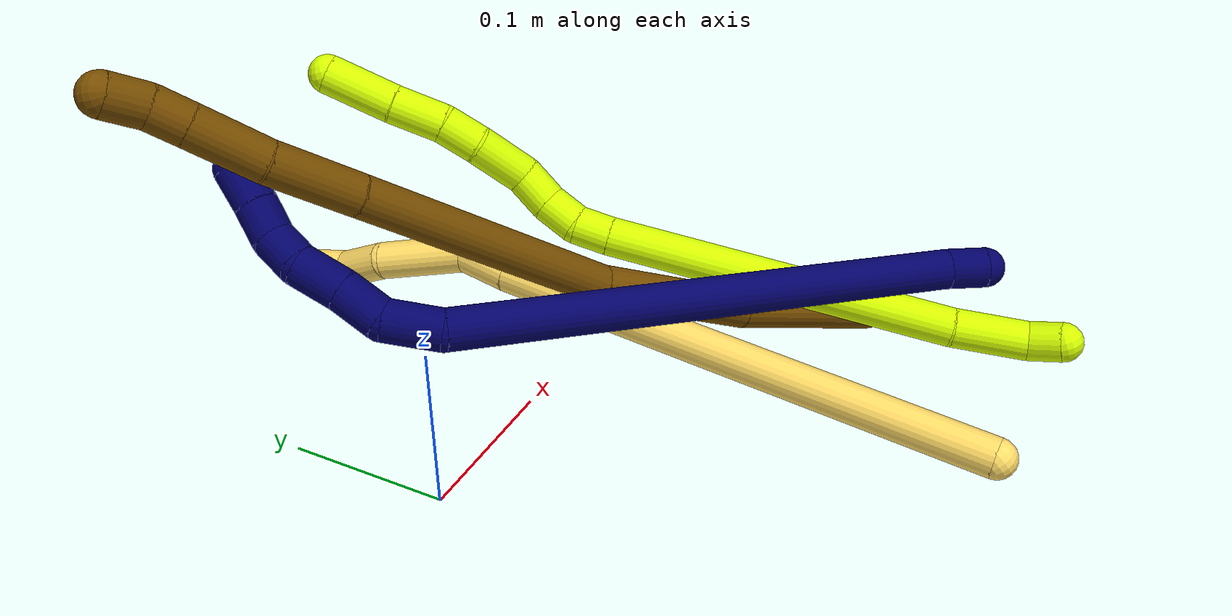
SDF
<sdf version="1.7">
 <world name="default">
  <model name="5">
   <static>0</static>
   <link name="5">
    <collision name="collision-cylinder-e_1_1_4">
     <pose>0.049279 0.136761 0.077776 -1.05371 0.303543 -0.177472</pose>
     <geometry><cylinder><radius>0.0125</radius><length>0.329734</length></cylinder></geometry>
     <surface>
      <friction><ode><mu>1.16</mu><mu2>1.16</mu2><slip1>0</slip1><slip2>0</slip2></ode></friction>
      <contact><ode><kp>1e+06</kp><kd>1</kd><max_vel>0</max_vel><min_depth>0.001</min_depth></ode></contact>
     </surface>
    </collision>
    <visual name="visual-cylinder-e_1_1_4">
     <pose>0.049279 0.136761 0.077776 -1.05371 0.303543 -0.177472</pose>
     <geometry><cylinder><radius>0.0125</radius><length>0.329734</length></cylinder></geometry>
     <material><ambient>1 0.858824 0.4 1</ambient></material>
    </visual>
    <collision name="collision-cylinder-e_2_4_5">
     <pose>0.104478 0.288038 0.162704 -1.11299 0.350711 -0.219548</pose>
     <geometry><cylinder><radius>0.0125</radius><length>0.034462</length></cylinder></geometry>
     <surface>
      <friction><ode><mu>1.16</mu><mu2>1.16</mu2><slip1>0</slip1><slip2>0</slip2></ode></friction>
      <contact><ode><kp>1e+06</kp><kd>1</kd><max_vel>0</max_vel><min_depth>0.001</min_depth></ode></contact>
     </surface>
    </collision>
    <visual name="visual-cylinder-e_2_4_5">
     <pose>0.104478 0.288038 0.162704 -1.11299 0.350711 -0.219548</pose>
     <geometry><cylinder><radius>0.0125</radius><length>0.034462</length></cylinder></geometry>
     <material><ambient>1 0.858824 0.4 1</ambient></material>
    </visual>
    <collision name="collision-cylinder-e_3_5_6">
     <pose>0.116047 0.319718 0.193411 -0.629711 0.191445 -0.062523</pose>
     <geometry><cylinder><radius>0.0125</radius><length>0.059375</length></cylinder></geometry>
     <surface>
      <friction><ode><mu>1.16</mu><mu2>1.16</mu2><slip1>0</slip1><slip2>0</slip2></ode></friction>
      <contact><ode><kp>1e+06</kp><kd>1</kd><max_vel>0</max_vel><min_depth>0.001</min_depth></ode></contact>
     </surface>
    </collision>
    <visual name="visual-cylinder-e_3_5_6">
     <pose>0.116047 0.319718 0.193411 -0.629711 0.191445 -0.062523</pose>
     <geometry><cylinder><radius>0.0125</radius><length>0.059375</length></cylinder></geometry>
     <material><ambient>1 0.858824 0.4 1</ambient></material>
    </visual>
    <collision name="collision-cylinder-e_4_6_7">
     <pose>0.119295 0.348808 0.22956 -0.758168 -0.137537 0.054861</pose>
     <geometry><cylinder><radius>0.0125</radius><length>0.035022</length></cylinder></geometry>
     <surface>
      <friction><ode><mu>1.16</mu><mu2>1.16</mu2><slip1>0</slip1><slip2>0</slip2></ode></friction>
      <contact><ode><kp>1e+06</kp><kd>1</kd><max_vel>0</max_vel><min_depth>0.001</min_depth></ode></contact>
     </surface>
    </collision>
    <visual name="visual-cylinder-e_4_6_7">
     <pose>0.119295 0.348808 0.22956 -0.758168 -0.137537 0.054861</pose>
     <geometry><cylinder><radius>0.0125</radius><length>0.035022</length></cylinder></geometry>
     <material><ambient>1 0.858824 0.4 1</ambient></material>
    </visual>
    <collision name="collision-cylinder-e_5_7_8">
     <pose>0.119519 0.367778 0.24975 -0.747714 0.248162 -0.09778</pose>
     <geometry><cylinder><radius>0.0125</radius><length>0.021371</length></cylinder></geometry>
     <surface>
      <friction><ode><mu>1.16</mu><mu2>1.16</mu2><slip1>0</slip1><slip2>0</slip2></ode></friction>
      <contact><ode><kp>1e+06</kp><kd>1</kd><max_vel>0</max_vel><min_depth>0.001</min_depth></ode></contact>
     </surface>
    </collision>
    <visual name="visual-cylinder-e_5_7_8">
     <pose>0.119519 0.367778 0.24975 -0.747714 0.248162 -0.09778</pose>
     <geometry><cylinder><radius>0.0125</radius><length>0.021371</length></cylinder></geometry>
     <material><ambient>1 0.858824 0.4 1</ambient></material>
    </visual>
    <collision name="collision-cylinder-e_6_8_2">
     <pose>0.12338 0.382093 0.264124 -0.820444 0.123735 -0.053867</pose>
     <geometry><cylinder><radius>0.0125</radius><length>0.020036</length></cylinder></geometry>
     <surface>
      <friction><ode><mu>1.16</mu><mu2>1.16</mu2><slip1>0</slip1><slip2>0</slip2></ode></friction>
      <contact><ode><kp>1e+06</kp><kd>1</kd><max_vel>0</max_vel><min_depth>0.001</min_depth></ode></contact>
     </surface>
    </collision>
    <visual name="visual-cylinder-e_6_8_2">
     <pose>0.12338 0.382093 0.264124 -0.820444 0.123735 -0.053867</pose>
     <geometry><cylinder><radius>0.0125</radius><length>0.020036</length></cylinder></geometry>
     <material><ambient>1 0.858824 0.4 1</ambient></material>
    </visual>
    <collision name="collision-sphere-2">
     <pose>0.124617 0.389365 0.270903 0 -0 0</pose>
     <geometry><sphere><radius>0.0125</radius></sphere></geometry>
     <surface>
      <friction><ode><mu>1.16</mu><mu2>1.16</mu2><slip1>0</slip1><slip2>0</slip2></ode></friction>
      <contact><ode><kp>1e+06</kp><kd>1</kd><max_vel>0</max_vel><min_depth>0.001</min_depth></ode></contact>
     </surface>
    </collision>
    <visual name="visual-sphere-2">
     <pose>0.124617 0.389365 0.270903 0 -0 0</pose>
     <geometry><sphere><radius>0.0125</radius></sphere></geometry>
     <material><ambient>1 0.858824 0.4 1</ambient></material>
    </visual>
    <collision name="collision-sphere-4">
     <pose>0.098558 0.273522 0.155551 0 -0 0</pose>
     <geometry><sphere><radius>0.0125</radius></sphere></geometry>
     <surface>
      <friction><ode><mu>1.16</mu><mu2>1.16</mu2><slip1>0</slip1><slip2>0</slip2></ode></friction>
      <contact><ode><kp>1e+06</kp><kd>1</kd><max_vel>0</max_vel><min_depth>0.001</min_depth></ode></contact>
     </surface>
    </collision>
    <visual name="visual-sphere-4">
     <pose>0.098558 0.273522 0.155551 0 -0 0</pose>
     <geometry><sphere><radius>0.0125</radius></sphere></geometry>
     <material><ambient>1 0.858824 0.4 1</ambient></material>
    </visual>
    <collision name="collision-sphere-1">
     <geometry><sphere><radius>0.0125</radius></sphere></geometry>
     <surface>
      <friction><ode><mu>1.16</mu><mu2>1.16</mu2><slip1>0</slip1><slip2>0</slip2></ode></friction>
      <contact><ode><kp>1e+06</kp><kd>1</kd><max_vel>0</max_vel><min_depth>0.001</min_depth></ode></contact>
     </surface>
    </collision>
    <visual name="visual-sphere-1">
     <geometry><sphere><radius>0.0125</radius></sphere></geometry>
     <material><ambient>1 0.858824 0.4 1</ambient></material>
    </visual>
    <collision name="collision-sphere-8">
     <pose>0.122144 0.374821 0.257345 0 -0 0</pose>
     <geometry><sphere><radius>0.0125</radius></sphere></geometry>
     <surface>
      <friction><ode><mu>1.16</mu><mu2>1.16</mu2><slip1>0</slip1><slip2>0</slip2></ode></friction>
      <contact><ode><kp>1e+06</kp><kd>1</kd><max_vel>0</max_vel><min_depth>0.001</min_depth></ode></contact>
     </surface>
    </collision>
    <visual name="visual-sphere-8">
     <pose>0.122144 0.374821 0.257345 0 -0 0</pose>
     <geometry><sphere><radius>0.0125</radius></sphere></geometry>
     <material><ambient>1 0.858824 0.4 1</ambient></material>
    </visual>
    <collision name="collision-sphere-5">
     <pose>0.110398 0.302554 0.169856 0 -0 0</pose>
     <geometry><sphere><radius>0.0125</radius></sphere></geometry>
     <surface>
      <friction><ode><mu>1.16</mu><mu2>1.16</mu2><slip1>0</slip1><slip2>0</slip2></ode></friction>
      <contact><ode><kp>1e+06</kp><kd>1</kd><max_vel>0</max_vel><min_depth>0.001</min_depth></ode></contact>
     </surface>
    </collision>
    <visual name="visual-sphere-5">
     <pose>0.110398 0.302554 0.169856 0 -0 0</pose>
     <geometry><sphere><radius>0.0125</radius></sphere></geometry>
     <material><ambient>1 0.858824 0.4 1</ambient></material>
    </visual>
    <collision name="collision-sphere-6">
     <pose>0.121696 0.336882 0.216966 0 -0 0</pose>
     <geometry><sphere><radius>0.0125</radius></sphere></geometry>
     <surface>
      <friction><ode><mu>1.16</mu><mu2>1.16</mu2><slip1>0</slip1><slip2>0</slip2></ode></friction>
      <contact><ode><kp>1e+06</kp><kd>1</kd><max_vel>0</max_vel><min_depth>0.001</min_depth></ode></contact>
     </surface>
    </collision>
    <visual name="visual-sphere-6">
     <pose>0.121696 0.336882 0.216966 0 -0 0</pose>
     <geometry><sphere><radius>0.0125</radius></sphere></geometry>
     <material><ambient>1 0.858824 0.4 1</ambient></material>
    </visual>
    <collision name="collision-sphere-7">
     <pose>0.116895 0.360735 0.242155 0 -0 0</pose>
     <geometry><sphere><radius>0.0125</radius></sphere></geometry>
     <surface>
      <friction><ode><mu>1.16</mu><mu2>1.16</mu2><slip1>0</slip1><slip2>0</slip2></ode></friction>
      <contact><ode><kp>1e+06</kp><kd>1</kd><max_vel>0</max_vel><min_depth>0.001</min_depth></ode></contact>
     </surface>
    </collision>
    <visual name="visual-sphere-7">
     <pose>0.116895 0.360735 0.242155 0 -0 0</pose>
     <geometry><sphere><radius>0.0125</radius></sphere></geometry>
     <material><ambient>1 0.858824 0.4 1</ambient></material>
    </visual>
    <inertial>
     <pose>0.071888 0.203472 0.122811 0 -0 0</pose>
     <mass>0.5</mass>
     <inertia>
      <ixx>0.002352</ixx>
      <ixy>0</ixy>
      <ixz>0</ixz>
      <iyy>0.001145</iyy>
      <iyz>0</iyz>
      <izz>-0.003391</izz>
     </inertia>
    </inertial>
   </link>
   <pose>0.159964 -0.274229 0.012223 2.97259 -1.01652 2.66384</pose>
  </model>
  <model name="7">
   <static>0</static>
   <link name="7">
    <collision name="collision-cylinder-e_1_1_4">
     <pose>-0.001362 0.011906 -0.002287 -1.76054 -0.111901 0.135371</pose>
     <geometry><cylinder><radius>0.0125</radius><length>0.0244</length></cylinder></geometry>
     <surface>
      <friction><ode><mu>1.16</mu><mu2>1.16</mu2><slip1>0</slip1><slip2>0</slip2></ode></friction>
      <contact><ode><kp>1e+06</kp><kd>1</kd><max_vel>0</max_vel><min_depth>0.001</min_depth></ode></contact>
     </surface>
    </collision>
    <visual name="visual-cylinder-e_1_1_4">
     <pose>-0.001362 0.011906 -0.002287 -1.76054 -0.111901 0.135371</pose>
     <geometry><cylinder><radius>0.0125</radius><length>0.0244</length></cylinder></geometry>
     <material><ambient>0.003922 0 0.403922 1</ambient></material>
    </visual>
    <collision name="collision-cylinder-e_2_4_5">
     <pose>-0.053975 0.164733 -0.056145 -1.92162 -0.329108 0.466542</pose>
     <geometry><cylinder><radius>0.0125</radius><length>0.317143</length></cylinder></geometry>
     <surface>
      <friction><ode><mu>1.16</mu><mu2>1.16</mu2><slip1>0</slip1><slip2>0</slip2></ode></friction>
      <contact><ode><kp>1e+06</kp><kd>1</kd><max_vel>0</max_vel><min_depth>0.001</min_depth></ode></contact>
     </surface>
    </collision>
    <visual name="visual-cylinder-e_2_4_5">
     <pose>-0.053975 0.164733 -0.056145 -1.92162 -0.329108 0.466542</pose>
     <geometry><cylinder><radius>0.0125</radius><length>0.317143</length></cylinder></geometry>
     <material><ambient>0.003922 0 0.403922 1</ambient></material>
    </visual>
    <collision name="collision-cylinder-e_3_5_6">
     <pose>-0.108896 0.32237 -0.107687 -1.56897 -0.216195 0.215803</pose>
     <geometry><cylinder><radius>0.0125</radius><length>0.034231</length></cylinder></geometry>
     <surface>
      <friction><ode><mu>1.16</mu><mu2>1.16</mu2><slip1>0</slip1><slip2>0</slip2></ode></friction>
      <contact><ode><kp>1e+06</kp><kd>1</kd><max_vel>0</max_vel><min_depth>0.001</min_depth></ode></contact>
     </surface>
    </collision>
    <visual name="visual-cylinder-e_3_5_6">
     <pose>-0.108896 0.32237 -0.107687 -1.56897 -0.216195 0.215803</pose>
     <geometry><cylinder><radius>0.0125</radius><length>0.034231</length></cylinder></geometry>
     <material><ambient>0.003922 0 0.403922 1</ambient></material>
    </visual>
    <collision name="collision-cylinder-e_4_6_7">
     <pose>-0.115021 0.350955 -0.101178 -1.07117 -0.179466 0.106689</pose>
     <geometry><cylinder><radius>0.0125</radius><length>0.027483</length></cylinder></geometry>
     <surface>
      <friction><ode><mu>1.16</mu><mu2>1.16</mu2><slip1>0</slip1><slip2>0</slip2></ode></friction>
      <contact><ode><kp>1e+06</kp><kd>1</kd><max_vel>0</max_vel><min_depth>0.001</min_depth></ode></contact>
     </surface>
    </collision>
    <visual name="visual-cylinder-e_4_6_7">
     <pose>-0.115021 0.350955 -0.101178 -1.07117 -0.179466 0.106689</pose>
     <geometry><cylinder><radius>0.0125</radius><length>0.027483</length></cylinder></geometry>
     <material><ambient>0.003922 0 0.403922 1</ambient></material>
    </visual>
    <collision name="collision-cylinder-e_5_7_8">
     <pose>-0.120445 0.375814 -0.089388 -1.18257 -0.20865 0.140372</pose>
     <geometry><cylinder><radius>0.0125</radius><length>0.028691</length></cylinder></geometry>
     <surface>
      <friction><ode><mu>1.16</mu><mu2>1.16</mu2><slip1>0</slip1><slip2>0</slip2></ode></friction>
      <contact><ode><kp>1e+06</kp><kd>1</kd><max_vel>0</max_vel><min_depth>0.001</min_depth></ode></contact>
     </surface>
    </collision>
    <visual name="visual-cylinder-e_5_7_8">
     <pose>-0.120445 0.375814 -0.089388 -1.18257 -0.20865 0.140372</pose>
     <geometry><cylinder><radius>0.0125</radius><length>0.028691</length></cylinder></geometry>
     <material><ambient>0.003922 0 0.403922 1</ambient></material>
    </visual>
    <collision name="collision-cylinder-e_6_8_9">
     <pose>-0.123397 0.397706 -0.077155 -0.909995 0.001717 -0.00084</pose>
     <geometry><cylinder><radius>0.0125</radius><length>0.02255</length></cylinder></geometry>
     <surface>
      <friction><ode><mu>1.16</mu><mu2>1.16</mu2><slip1>0</slip1><slip2>0</slip2></ode></friction>
      <contact><ode><kp>1e+06</kp><kd>1</kd><max_vel>0</max_vel><min_depth>0.001</min_depth></ode></contact>
     </surface>
    </collision>
    <visual name="visual-cylinder-e_6_8_9">
     <pose>-0.123397 0.397706 -0.077155 -0.909995 0.001717 -0.00084</pose>
     <geometry><cylinder><radius>0.0125</radius><length>0.02255</length></cylinder></geometry>
     <material><ambient>0.003922 0 0.403922 1</ambient></material>
    </visual>
    <collision name="collision-cylinder-e_7_9_10">
     <pose>-0.12623 0.412684 -0.061692 -0.618317 -0.265632 0.085293</pose>
     <geometry><cylinder><radius>0.0125</radius><length>0.02173</length></cylinder></geometry>
     <surface>
      <friction><ode><mu>1.16</mu><mu2>1.16</mu2><slip1>0</slip1><slip2>0</slip2></ode></friction>
      <contact><ode><kp>1e+06</kp><kd>1</kd><max_vel>0</max_vel><min_depth>0.001</min_depth></ode></contact>
     </surface>
    </collision>
    <visual name="visual-cylinder-e_7_9_10">
     <pose>-0.12623 0.412684 -0.061692 -0.618317 -0.265632 0.085293</pose>
     <geometry><cylinder><radius>0.0125</radius><length>0.02173</length></cylinder></geometry>
     <material><ambient>0.003922 0 0.403922 1</ambient></material>
    </visual>
    <collision name="collision-cylinder-e_8_10_2">
     <pose>-0.132101 0.42596 -0.044186 -0.676621 -0.25672 0.090761</pose>
     <geometry><cylinder><radius>0.0125</radius><length>0.023772</length></cylinder></geometry>
     <surface>
      <friction><ode><mu>1.16</mu><mu2>1.16</mu2><slip1>0</slip1><slip2>0</slip2></ode></friction>
      <contact><ode><kp>1e+06</kp><kd>1</kd><max_vel>0</max_vel><min_depth>0.001</min_depth></ode></contact>
     </surface>
    </collision>
    <visual name="visual-cylinder-e_8_10_2">
     <pose>-0.132101 0.42596 -0.044186 -0.676621 -0.25672 0.090761</pose>
     <geometry><cylinder><radius>0.0125</radius><length>0.023772</length></cylinder></geometry>
     <material><ambient>0.003922 0 0.403922 1</ambient></material>
    </visual>
    <collision name="collision-sphere-2">
     <pose>-0.135119 0.433159 -0.035222 0 -0 0</pose>
     <geometry><sphere><radius>0.0125</radius></sphere></geometry>
     <surface>
      <friction><ode><mu>1.16</mu><mu2>1.16</mu2><slip1>0</slip1><slip2>0</slip2></ode></friction>
      <contact><ode><kp>1e+06</kp><kd>1</kd><max_vel>0</max_vel><min_depth>0.001</min_depth></ode></contact>
     </surface>
    </collision>
    <visual name="visual-sphere-2">
     <pose>-0.135119 0.433159 -0.035222 0 -0 0</pose>
     <geometry><sphere><radius>0.0125</radius></sphere></geometry>
     <material><ambient>0.003922 0 0.403922 1</ambient></material>
    </visual>
    <collision name="collision-sphere-10">
     <pose>-0.129083 0.418762 -0.053149 0 -0 0</pose>
     <geometry><sphere><radius>0.0125</radius></sphere></geometry>
     <surface>
      <friction><ode><mu>1.16</mu><mu2>1.16</mu2><slip1>0</slip1><slip2>0</slip2></ode></friction>
      <contact><ode><kp>1e+06</kp><kd>1</kd><max_vel>0</max_vel><min_depth>0.001</min_depth></ode></contact>
     </surface>
    </collision>
    <visual name="visual-sphere-10">
     <pose>-0.129083 0.418762 -0.053149 0 -0 0</pose>
     <geometry><sphere><radius>0.0125</radius></sphere></geometry>
     <material><ambient>0.003922 0 0.403922 1</ambient></material>
    </visual>
    <collision name="collision-sphere-9">
     <pose>-0.123378 0.406607 -0.070235 0 -0 0</pose>
     <geometry><sphere><radius>0.0125</radius></sphere></geometry>
     <surface>
      <friction><ode><mu>1.16</mu><mu2>1.16</mu2><slip1>0</slip1><slip2>0</slip2></ode></friction>
      <contact><ode><kp>1e+06</kp><kd>1</kd><max_vel>0</max_vel><min_depth>0.001</min_depth></ode></contact>
     </surface>
    </collision>
    <visual name="visual-sphere-9">
     <pose>-0.123378 0.406607 -0.070235 0 -0 0</pose>
     <geometry><sphere><radius>0.0125</radius></sphere></geometry>
     <material><ambient>0.003922 0 0.403922 1</ambient></material>
    </visual>
    <collision name="collision-sphere-4">
     <pose>-0.002725 0.023812 -0.004573 0 -0 0</pose>
     <geometry><sphere><radius>0.0125</radius></sphere></geometry>
     <surface>
      <friction><ode><mu>1.16</mu><mu2>1.16</mu2><slip1>0</slip1><slip2>0</slip2></ode></friction>
      <contact><ode><kp>1e+06</kp><kd>1</kd><max_vel>0</max_vel><min_depth>0.001</min_depth></ode></contact>
     </surface>
    </collision>
    <visual name="visual-sphere-4">
     <pose>-0.002725 0.023812 -0.004573 0 -0 0</pose>
     <geometry><sphere><radius>0.0125</radius></sphere></geometry>
     <material><ambient>0.003922 0 0.403922 1</ambient></material>
    </visual>
    <collision name="collision-sphere-1">
     <geometry><sphere><radius>0.0125</radius></sphere></geometry>
     <surface>
      <friction><ode><mu>1.16</mu><mu2>1.16</mu2><slip1>0</slip1><slip2>0</slip2></ode></friction>
      <contact><ode><kp>1e+06</kp><kd>1</kd><max_vel>0</max_vel><min_depth>0.001</min_depth></ode></contact>
     </surface>
    </collision>
    <visual name="visual-sphere-1">
     <geometry><sphere><radius>0.0125</radius></sphere></geometry>
     <material><ambient>0.003922 0 0.403922 1</ambient></material>
    </visual>
    <collision name="collision-sphere-8">
     <pose>-0.123417 0.388804 -0.084075 0 -0 0</pose>
     <geometry><sphere><radius>0.0125</radius></sphere></geometry>
     <surface>
      <friction><ode><mu>1.16</mu><mu2>1.16</mu2><slip1>0</slip1><slip2>0</slip2></ode></friction>
      <contact><ode><kp>1e+06</kp><kd>1</kd><max_vel>0</max_vel><min_depth>0.001</min_depth></ode></contact>
     </surface>
    </collision>
    <visual name="visual-sphere-8">
     <pose>-0.123417 0.388804 -0.084075 0 -0 0</pose>
     <geometry><sphere><radius>0.0125</radius></sphere></geometry>
     <material><ambient>0.003922 0 0.403922 1</ambient></material>
    </visual>
    <collision name="collision-sphere-5">
     <pose>-0.105225 0.305654 -0.107717 0 -0 0</pose>
     <geometry><sphere><radius>0.0125</radius></sphere></geometry>
     <surface>
      <friction><ode><mu>1.16</mu><mu2>1.16</mu2><slip1>0</slip1><slip2>0</slip2></ode></friction>
      <contact><ode><kp>1e+06</kp><kd>1</kd><max_vel>0</max_vel><min_depth>0.001</min_depth></ode></contact>
     </surface>
    </collision>
    <visual name="visual-sphere-5">
     <pose>-0.105225 0.305654 -0.107717 0 -0 0</pose>
     <geometry><sphere><radius>0.0125</radius></sphere></geometry>
     <material><ambient>0.003922 0 0.403922 1</ambient></material>
    </visual>
    <collision name="collision-sphere-6">
     <pose>-0.112568 0.339087 -0.107656 0 -0 0</pose>
     <geometry><sphere><radius>0.0125</radius></sphere></geometry>
     <surface>
      <friction><ode><mu>1.16</mu><mu2>1.16</mu2><slip1>0</slip1><slip2>0</slip2></ode></friction>
      <contact><ode><kp>1e+06</kp><kd>1</kd><max_vel>0</max_vel><min_depth>0.001</min_depth></ode></contact>
     </surface>
    </collision>
    <visual name="visual-sphere-6">
     <pose>-0.112568 0.339087 -0.107656 0 -0 0</pose>
     <geometry><sphere><radius>0.0125</radius></sphere></geometry>
     <material><ambient>0.003922 0 0.403922 1</ambient></material>
    </visual>
    <collision name="collision-sphere-7">
     <pose>-0.117474 0.362824 -0.094701 0 -0 0</pose>
     <geometry><sphere><radius>0.0125</radius></sphere></geometry>
     <surface>
      <friction><ode><mu>1.16</mu><mu2>1.16</mu2><slip1>0</slip1><slip2>0</slip2></ode></friction>
      <contact><ode><kp>1e+06</kp><kd>1</kd><max_vel>0</max_vel><min_depth>0.001</min_depth></ode></contact>
     </surface>
    </collision>
    <visual name="visual-sphere-7">
     <pose>-0.117474 0.362824 -0.094701 0 -0 0</pose>
     <geometry><sphere><radius>0.0125</radius></sphere></geometry>
     <material><ambient>0.003922 0 0.403922 1</ambient></material>
    </visual>
    <inertial>
     <pose>-0.072323 0.224118 -0.062048 0 -0 0</pose>
     <mass>0.5</mass>
     <inertia>
      <ixx>0.003403</ixx>
      <ixy>0</ixy>
      <ixz>0</ixz>
      <iyy>0.000724</iyy>
      <iyz>0</iyz>
      <izz>-0.001525</izz>
     </inertia>
    </inertial>
   </link>
   <pose>0.270949 -0.232151 0.066809 0.027624 0.91929 0.331264</pose>
  </model>
  <model name="12">
   <static>0</static>
   <link name="12">
    <collision name="collision-cylinder-e_1_1_4">
     <pose>-0.033675 0.006588 -0.032366 -2.94078 -0.795072 2.67063</pose>
     <geometry><cylinder><radius>0.0125</radius><length>0.09434</length></cylinder></geometry>
     <surface>
      <friction><ode><mu>1.16</mu><mu2>1.16</mu2><slip1>0</slip1><slip2>0</slip2></ode></friction>
      <contact><ode><kp>1e+06</kp><kd>1</kd><max_vel>0</max_vel><min_depth>0.001</min_depth></ode></contact>
     </surface>
    </collision>
    <visual name="visual-cylinder-e_1_1_4">
     <pose>-0.033675 0.006588 -0.032366 -2.94078 -0.795072 2.67063</pose>
     <geometry><cylinder><radius>0.0125</radius><length>0.09434</length></cylinder></geometry>
     <material><ambient>0.466667 0.301961 0 1</ambient></material>
    </visual>
    <collision name="collision-cylinder-e_2_4_5">
     <pose>-0.105726 0.027007 -0.095637 -2.7208 -0.847856 2.25762</pose>
     <geometry><cylinder><radius>0.0125</radius><length>0.102352</length></cylinder></geometry>
     <surface>
      <friction><ode><mu>1.16</mu><mu2>1.16</mu2><slip1>0</slip1><slip2>0</slip2></ode></friction>
      <contact><ode><kp>1e+06</kp><kd>1</kd><max_vel>0</max_vel><min_depth>0.001</min_depth></ode></contact>
     </surface>
    </collision>
    <visual name="visual-cylinder-e_2_4_5">
     <pose>-0.105726 0.027007 -0.095637 -2.7208 -0.847856 2.25762</pose>
     <geometry><cylinder><radius>0.0125</radius><length>0.102352</length></cylinder></geometry>
     <material><ambient>0.466667 0.301961 0 1</ambient></material>
    </visual>
    <collision name="collision-cylinder-e_3_5_6">
     <pose>-0.206887 0.074561 -0.166518 -2.44084 -0.876252 1.81666</pose>
     <geometry><cylinder><radius>0.0125</radius><length>0.163433</length></cylinder></geometry>
     <surface>
      <friction><ode><mu>1.16</mu><mu2>1.16</mu2><slip1>0</slip1><slip2>0</slip2></ode></friction>
      <contact><ode><kp>1e+06</kp><kd>1</kd><max_vel>0</max_vel><min_depth>0.001</min_depth></ode></contact>
     </surface>
    </collision>
    <visual name="visual-cylinder-e_3_5_6">
     <pose>-0.206887 0.074561 -0.166518 -2.44084 -0.876252 1.81666</pose>
     <geometry><cylinder><radius>0.0125</radius><length>0.163433</length></cylinder></geometry>
     <material><ambient>0.466667 0.301961 0 1</ambient></material>
    </visual>
    <collision name="collision-cylinder-e_4_6_7">
     <pose>-0.288967 0.119366 -0.220544 -2.47372 -0.823036 1.79833</pose>
     <geometry><cylinder><radius>0.0125</radius><length>0.052627</length></cylinder></geometry>
     <surface>
      <friction><ode><mu>1.16</mu><mu2>1.16</mu2><slip1>0</slip1><slip2>0</slip2></ode></friction>
      <contact><ode><kp>1e+06</kp><kd>1</kd><max_vel>0</max_vel><min_depth>0.001</min_depth></ode></contact>
     </surface>
    </collision>
    <visual name="visual-cylinder-e_4_6_7">
     <pose>-0.288967 0.119366 -0.220544 -2.47372 -0.823036 1.79833</pose>
     <geometry><cylinder><radius>0.0125</radius><length>0.052627</length></cylinder></geometry>
     <material><ambient>0.466667 0.301961 0 1</ambient></material>
    </visual>
    <collision name="collision-cylinder-e_5_7_8">
     <pose>-0.322241 0.141427 -0.246827 -2.41021 -0.704755 1.53034</pose>
     <geometry><cylinder><radius>0.0125</radius><length>0.04316</length></cylinder></geometry>
     <surface>
      <friction><ode><mu>1.16</mu><mu2>1.16</mu2><slip1>0</slip1><slip2>0</slip2></ode></friction>
      <contact><ode><kp>1e+06</kp><kd>1</kd><max_vel>0</max_vel><min_depth>0.001</min_depth></ode></contact>
     </surface>
    </collision>
    <visual name="visual-cylinder-e_5_7_8">
     <pose>-0.322241 0.141427 -0.246827 -2.41021 -0.704755 1.53034</pose>
     <geometry><cylinder><radius>0.0125</radius><length>0.04316</length></cylinder></geometry>
     <material><ambient>0.466667 0.301961 0 1</ambient></material>
    </visual>
    <collision name="collision-cylinder-e_6_8_9">
     <pose>-0.342974 0.157706 -0.265102 -2.42144 -0.698873 1.53814</pose>
     <geometry><cylinder><radius>0.0125</radius><length>0.02099</length></cylinder></geometry>
     <surface>
      <friction><ode><mu>1.16</mu><mu2>1.16</mu2><slip1>0</slip1><slip2>0</slip2></ode></friction>
      <contact><ode><kp>1e+06</kp><kd>1</kd><max_vel>0</max_vel><min_depth>0.001</min_depth></ode></contact>
     </surface>
    </collision>
    <visual name="visual-cylinder-e_6_8_9">
     <pose>-0.342974 0.157706 -0.265102 -2.42144 -0.698873 1.53814</pose>
     <geometry><cylinder><radius>0.0125</radius><length>0.02099</length></cylinder></geometry>
     <material><ambient>0.466667 0.301961 0 1</ambient></material>
    </visual>
    <collision name="collision-cylinder-e_7_9_2">
     <pose>-0.358823 0.166557 -0.277306 -2.61886 -0.907061 2.13777</pose>
     <geometry><cylinder><radius>0.0125</radius><length>0.023097</length></cylinder></geometry>
     <surface>
      <friction><ode><mu>1.16</mu><mu2>1.16</mu2><slip1>0</slip1><slip2>0</slip2></ode></friction>
      <contact><ode><kp>1e+06</kp><kd>1</kd><max_vel>0</max_vel><min_depth>0.001</min_depth></ode></contact>
     </surface>
    </collision>
    <visual name="visual-cylinder-e_7_9_2">
     <pose>-0.358823 0.166557 -0.277306 -2.61886 -0.907061 2.13777</pose>
     <geometry><cylinder><radius>0.0125</radius><length>0.023097</length></cylinder></geometry>
     <material><ambient>0.466667 0.301961 0 1</ambient></material>
    </visual>
    <collision name="collision-sphere-2">
     <pose>-0.36792 0.170109 -0.283471 0 -0 0</pose>
     <geometry><sphere><radius>0.0125</radius></sphere></geometry>
     <surface>
      <friction><ode><mu>1.16</mu><mu2>1.16</mu2><slip1>0</slip1><slip2>0</slip2></ode></friction>
      <contact><ode><kp>1e+06</kp><kd>1</kd><max_vel>0</max_vel><min_depth>0.001</min_depth></ode></contact>
     </surface>
    </collision>
    <visual name="visual-sphere-2">
     <pose>-0.36792 0.170109 -0.283471 0 -0 0</pose>
     <geometry><sphere><radius>0.0125</radius></sphere></geometry>
     <material><ambient>0.466667 0.301961 0 1</ambient></material>
    </visual>
    <collision name="collision-sphere-9">
     <pose>-0.349726 0.163005 -0.271142 0 -0 0</pose>
     <geometry><sphere><radius>0.0125</radius></sphere></geometry>
     <surface>
      <friction><ode><mu>1.16</mu><mu2>1.16</mu2><slip1>0</slip1><slip2>0</slip2></ode></friction>
      <contact><ode><kp>1e+06</kp><kd>1</kd><max_vel>0</max_vel><min_depth>0.001</min_depth></ode></contact>
     </surface>
    </collision>
    <visual name="visual-sphere-9">
     <pose>-0.349726 0.163005 -0.271142 0 -0 0</pose>
     <geometry><sphere><radius>0.0125</radius></sphere></geometry>
     <material><ambient>0.466667 0.301961 0 1</ambient></material>
    </visual>
    <collision name="collision-sphere-4">
     <pose>-0.067351 0.013177 -0.064733 0 -0 0</pose>
     <geometry><sphere><radius>0.0125</radius></sphere></geometry>
     <surface>
      <friction><ode><mu>1.16</mu><mu2>1.16</mu2><slip1>0</slip1><slip2>0</slip2></ode></friction>
      <contact><ode><kp>1e+06</kp><kd>1</kd><max_vel>0</max_vel><min_depth>0.001</min_depth></ode></contact>
     </surface>
    </collision>
    <visual name="visual-sphere-4">
     <pose>-0.067351 0.013177 -0.064733 0 -0 0</pose>
     <geometry><sphere><radius>0.0125</radius></sphere></geometry>
     <material><ambient>0.466667 0.301961 0 1</ambient></material>
    </visual>
    <collision name="collision-sphere-1">
     <geometry><sphere><radius>0.0125</radius></sphere></geometry>
     <surface>
      <friction><ode><mu>1.16</mu><mu2>1.16</mu2><slip1>0</slip1><slip2>0</slip2></ode></friction>
      <contact><ode><kp>1e+06</kp><kd>1</kd><max_vel>0</max_vel><min_depth>0.001</min_depth></ode></contact>
     </surface>
    </collision>
    <visual name="visual-sphere-1">
     <geometry><sphere><radius>0.0125</radius></sphere></geometry>
     <material><ambient>0.466667 0.301961 0 1</ambient></material>
    </visual>
    <collision name="collision-sphere-8">
     <pose>-0.336222 0.152407 -0.259062 0 -0 0</pose>
     <geometry><sphere><radius>0.0125</radius></sphere></geometry>
     <surface>
      <friction><ode><mu>1.16</mu><mu2>1.16</mu2><slip1>0</slip1><slip2>0</slip2></ode></friction>
      <contact><ode><kp>1e+06</kp><kd>1</kd><max_vel>0</max_vel><min_depth>0.001</min_depth></ode></contact>
     </surface>
    </collision>
    <visual name="visual-sphere-8">
     <pose>-0.336222 0.152407 -0.259062 0 -0 0</pose>
     <geometry><sphere><radius>0.0125</radius></sphere></geometry>
     <material><ambient>0.466667 0.301961 0 1</ambient></material>
    </visual>
    <collision name="collision-sphere-5">
     <pose>-0.144101 0.040837 -0.126541 0 -0 0</pose>
     <geometry><sphere><radius>0.0125</radius></sphere></geometry>
     <surface>
      <friction><ode><mu>1.16</mu><mu2>1.16</mu2><slip1>0</slip1><slip2>0</slip2></ode></friction>
      <contact><ode><kp>1e+06</kp><kd>1</kd><max_vel>0</max_vel><min_depth>0.001</min_depth></ode></contact>
     </surface>
    </collision>
    <visual name="visual-sphere-5">
     <pose>-0.144101 0.040837 -0.126541 0 -0 0</pose>
     <geometry><sphere><radius>0.0125</radius></sphere></geometry>
     <material><ambient>0.466667 0.301961 0 1</ambient></material>
    </visual>
    <collision name="collision-sphere-6">
     <pose>-0.269674 0.108285 -0.206495 0 -0 0</pose>
     <geometry><sphere><radius>0.0125</radius></sphere></geometry>
     <surface>
      <friction><ode><mu>1.16</mu><mu2>1.16</mu2><slip1>0</slip1><slip2>0</slip2></ode></friction>
      <contact><ode><kp>1e+06</kp><kd>1</kd><max_vel>0</max_vel><min_depth>0.001</min_depth></ode></contact>
     </surface>
    </collision>
    <visual name="visual-sphere-6">
     <pose>-0.269674 0.108285 -0.206495 0 -0 0</pose>
     <geometry><sphere><radius>0.0125</radius></sphere></geometry>
     <material><ambient>0.466667 0.301961 0 1</ambient></material>
    </visual>
    <collision name="collision-sphere-7">
     <pose>-0.308261 0.130448 -0.234592 0 -0 0</pose>
     <geometry><sphere><radius>0.0125</radius></sphere></geometry>
     <surface>
      <friction><ode><mu>1.16</mu><mu2>1.16</mu2><slip1>0</slip1><slip2>0</slip2></ode></friction>
      <contact><ode><kp>1e+06</kp><kd>1</kd><max_vel>0</max_vel><min_depth>0.001</min_depth></ode></contact>
     </surface>
    </collision>
    <visual name="visual-sphere-7">
     <pose>-0.308261 0.130448 -0.234592 0 -0 0</pose>
     <geometry><sphere><radius>0.0125</radius></sphere></geometry>
     <material><ambient>0.466667 0.301961 0 1</ambient></material>
    </visual>
    <inertial>
     <pose>-0.184826 0.070229 -0.148572 0 -0 0</pose>
     <mass>0.5</mass>
     <inertia>
      <ixx>0.000145</ixx>
      <ixy>0</ixy>
      <ixz>0</ixz>
      <iyy>0.000739</iyy>
      <iyz>0</iyz>
      <izz>0.000203</izz>
     </inertia>
    </inertial>
   </link>
   <pose>0.273465 -0.159714 0.011539 1.26518 0.429076 0.027045</pose>
  </model>
  <model name="15">
   <static>0</static>
   <link name="15">
    <collision name="collision-cylinder-e_1_1_4">
     <pose>0.000375 0.010803 0.001891 -1.39751 0.034151 -0.028693</pose>
     <geometry><cylinder><radius>0.0125</radius><length>0.021947</length></cylinder></geometry>
     <surface>
      <friction><ode><mu>1.16</mu><mu2>1.16</mu2><slip1>0</slip1><slip2>0</slip2></ode></friction>
      <contact><ode><kp>1e+06</kp><kd>1</kd><max_vel>0</max_vel><min_depth>0.001</min_depth></ode></contact>
     </surface>
    </collision>
    <visual name="visual-cylinder-e_1_1_4">
     <pose>0.000375 0.010803 0.001891 -1.39751 0.034151 -0.028693</pose>
     <geometry><cylinder><radius>0.0125</radius><length>0.021947</length></cylinder></geometry>
     <material><ambient>0.835294 1 0 1</ambient></material>
    </visual>
    <collision name="collision-cylinder-e_2_4_5">
     <pose>-0.006228 0.041813 0.015186 -1.05698 -0.29212 0.171369</pose>
     <geometry><cylinder><radius>0.0125</radius><length>0.048459</length></cylinder></geometry>
     <surface>
      <friction><ode><mu>1.16</mu><mu2>1.16</mu2><slip1>0</slip1><slip2>0</slip2></ode></friction>
      <contact><ode><kp>1e+06</kp><kd>1</kd><max_vel>0</max_vel><min_depth>0.001</min_depth></ode></contact>
     </surface>
    </collision>
    <visual name="visual-cylinder-e_2_4_5">
     <pose>-0.006228 0.041813 0.015186 -1.05698 -0.29212 0.171369</pose>
     <geometry><cylinder><radius>0.0125</radius><length>0.048459</length></cylinder></geometry>
     <material><ambient>0.835294 1 0 1</ambient></material>
    </visual>
    <collision name="collision-cylinder-e_3_5_6">
     <pose>-0.032315 0.155714 0.083335 -1.02624 -0.172717 0.097485</pose>
     <geometry><cylinder><radius>0.0125</radius><length>0.222385</length></cylinder></geometry>
     <surface>
      <friction><ode><mu>1.16</mu><mu2>1.16</mu2><slip1>0</slip1><slip2>0</slip2></ode></friction>
      <contact><ode><kp>1e+06</kp><kd>1</kd><max_vel>0</max_vel><min_depth>0.001</min_depth></ode></contact>
     </surface>
    </collision>
    <visual name="visual-cylinder-e_3_5_6">
     <pose>-0.032315 0.155714 0.083335 -1.02624 -0.172717 0.097485</pose>
     <geometry><cylinder><radius>0.0125</radius><length>0.222385</length></cylinder></geometry>
     <material><ambient>0.835294 1 0 1</ambient></material>
    </visual>
    <collision name="collision-cylinder-e_4_6_7">
     <pose>-0.053589 0.258226 0.146682 -0.928089 -0.19402 0.097335</pose>
     <geometry><cylinder><radius>0.0125</radius><length>0.022451</length></cylinder></geometry>
     <surface>
      <friction><ode><mu>1.16</mu><mu2>1.16</mu2><slip1>0</slip1><slip2>0</slip2></ode></friction>
      <contact><ode><kp>1e+06</kp><kd>1</kd><max_vel>0</max_vel><min_depth>0.001</min_depth></ode></contact>
     </surface>
    </collision>
    <visual name="visual-cylinder-e_4_6_7">
     <pose>-0.053589 0.258226 0.146682 -0.928089 -0.19402 0.097335</pose>
     <geometry><cylinder><radius>0.0125</radius><length>0.022451</length></cylinder></geometry>
     <material><ambient>0.835294 1 0 1</ambient></material>
    </visual>
    <collision name="collision-cylinder-e_5_7_8">
     <pose>-0.05487 0.274453 0.161882 -0.711316 0.077722 -0.028882</pose>
     <geometry><cylinder><radius>0.0125</radius><length>0.022771</length></cylinder></geometry>
     <surface>
      <friction><ode><mu>1.16</mu><mu2>1.16</mu2><slip1>0</slip1><slip2>0</slip2></ode></friction>
      <contact><ode><kp>1e+06</kp><kd>1</kd><max_vel>0</max_vel><min_depth>0.001</min_depth></ode></contact>
     </surface>
    </collision>
    <visual name="visual-cylinder-e_5_7_8">
     <pose>-0.05487 0.274453 0.161882 -0.711316 0.077722 -0.028882</pose>
     <geometry><cylinder><radius>0.0125</radius><length>0.022771</length></cylinder></geometry>
     <material><ambient>0.835294 1 0 1</ambient></material>
    </visual>
    <collision name="collision-cylinder-e_6_8_9">
     <pose>-0.053523 0.287416 0.181263 -0.475534 0.038097 -0.009234</pose>
     <geometry><cylinder><radius>0.0125</radius><length>0.024273</length></cylinder></geometry>
     <surface>
      <friction><ode><mu>1.16</mu><mu2>1.16</mu2><slip1>0</slip1><slip2>0</slip2></ode></friction>
      <contact><ode><kp>1e+06</kp><kd>1</kd><max_vel>0</max_vel><min_depth>0.001</min_depth></ode></contact>
     </surface>
    </collision>
    <visual name="visual-cylinder-e_6_8_9">
     <pose>-0.053523 0.287416 0.181263 -0.475534 0.038097 -0.009234</pose>
     <geometry><cylinder><radius>0.0125</radius><length>0.024273</length></cylinder></geometry>
     <material><ambient>0.835294 1 0 1</ambient></material>
    </visual>
    <collision name="collision-cylinder-e_7_9_10">
     <pose>-0.059779 0.300938 0.206709 -0.49784 -0.382662 0.098395</pose>
     <geometry><cylinder><radius>0.0125</radius><length>0.035983</length></cylinder></geometry>
     <surface>
      <friction><ode><mu>1.16</mu><mu2>1.16</mu2><slip1>0</slip1><slip2>0</slip2></ode></friction>
      <contact><ode><kp>1e+06</kp><kd>1</kd><max_vel>0</max_vel><min_depth>0.001</min_depth></ode></contact>
     </surface>
    </collision>
    <visual name="visual-cylinder-e_7_9_10">
     <pose>-0.059779 0.300938 0.206709 -0.49784 -0.382662 0.098395</pose>
     <geometry><cylinder><radius>0.0125</radius><length>0.035983</length></cylinder></geometry>
     <material><ambient>0.835294 1 0 1</ambient></material>
    </visual>
    <collision name="collision-cylinder-e_8_10_11">
     <pose>-0.06965 0.316016 0.230973 -0.637319 -0.258082 0.085565</pose>
     <geometry><cylinder><radius>0.0125</radius><length>0.024708</length></cylinder></geometry>
     <surface>
      <friction><ode><mu>1.16</mu><mu2>1.16</mu2><slip1>0</slip1><slip2>0</slip2></ode></friction>
      <contact><ode><kp>1e+06</kp><kd>1</kd><max_vel>0</max_vel><min_depth>0.001</min_depth></ode></contact>
     </surface>
    </collision>
    <visual name="visual-cylinder-e_8_10_11">
     <pose>-0.06965 0.316016 0.230973 -0.637319 -0.258082 0.085565</pose>
     <geometry><cylinder><radius>0.0125</radius><length>0.024708</length></cylinder></geometry>
     <material><ambient>0.835294 1 0 1</ambient></material>
    </visual>
    <collision name="collision-cylinder-e_9_11_12">
     <pose>-0.077615 0.334761 0.251288 -0.826665 -0.295302 0.130284</pose>
     <geometry><cylinder><radius>0.0125</radius><length>0.033069</length></cylinder></geometry>
     <surface>
      <friction><ode><mu>1.16</mu><mu2>1.16</mu2><slip1>0</slip1><slip2>0</slip2></ode></friction>
      <contact><ode><kp>1e+06</kp><kd>1</kd><max_vel>0</max_vel><min_depth>0.001</min_depth></ode></contact>
     </surface>
    </collision>
    <visual name="visual-cylinder-e_9_11_12">
     <pose>-0.077615 0.334761 0.251288 -0.826665 -0.295302 0.130284</pose>
     <geometry><cylinder><radius>0.0125</radius><length>0.033069</length></cylinder></geometry>
     <material><ambient>0.835294 1 0 1</ambient></material>
    </visual>
    <collision name="collision-cylinder-e_10_12_2">
     <pose>-0.087243 0.361734 0.27699 -0.796876 -0.220923 0.093311</pose>
     <geometry><cylinder><radius>0.0125</radius><length>0.043955</length></cylinder></geometry>
     <surface>
      <friction><ode><mu>1.16</mu><mu2>1.16</mu2><slip1>0</slip1><slip2>0</slip2></ode></friction>
      <contact><ode><kp>1e+06</kp><kd>1</kd><max_vel>0</max_vel><min_depth>0.001</min_depth></ode></contact>
     </surface>
    </collision>
    <visual name="visual-cylinder-e_10_12_2">
     <pose>-0.087243 0.361734 0.27699 -0.796876 -0.220923 0.093311</pose>
     <geometry><cylinder><radius>0.0125</radius><length>0.043955</length></cylinder></geometry>
     <material><ambient>0.835294 1 0 1</ambient></material>
    </visual>
    <collision name="collision-sphere-2">
     <pose>-0.092059 0.37707 0.291977 0 -0 0</pose>
     <geometry><sphere><radius>0.0125</radius></sphere></geometry>
     <surface>
      <friction><ode><mu>1.16</mu><mu2>1.16</mu2><slip1>0</slip1><slip2>0</slip2></ode></friction>
      <contact><ode><kp>1e+06</kp><kd>1</kd><max_vel>0</max_vel><min_depth>0.001</min_depth></ode></contact>
     </surface>
    </collision>
    <visual name="visual-sphere-2">
     <pose>-0.092059 0.37707 0.291977 0 -0 0</pose>
     <geometry><sphere><radius>0.0125</radius></sphere></geometry>
     <material><ambient>0.835294 1 0 1</ambient></material>
    </visual>
    <collision name="collision-sphere-12">
     <pose>-0.082427 0.346398 0.262002 0 -0 0</pose>
     <geometry><sphere><radius>0.0125</radius></sphere></geometry>
     <surface>
      <friction><ode><mu>1.16</mu><mu2>1.16</mu2><slip1>0</slip1><slip2>0</slip2></ode></friction>
      <contact><ode><kp>1e+06</kp><kd>1</kd><max_vel>0</max_vel><min_depth>0.001</min_depth></ode></contact>
     </surface>
    </collision>
    <visual name="visual-sphere-12">
     <pose>-0.082427 0.346398 0.262002 0 -0 0</pose>
     <geometry><sphere><radius>0.0125</radius></sphere></geometry>
     <material><ambient>0.835294 1 0 1</ambient></material>
    </visual>
    <collision name="collision-sphere-11">
     <pose>-0.072803 0.323123 0.240573 0 -0 0</pose>
     <geometry><sphere><radius>0.0125</radius></sphere></geometry>
     <surface>
      <friction><ode><mu>1.16</mu><mu2>1.16</mu2><slip1>0</slip1><slip2>0</slip2></ode></friction>
      <contact><ode><kp>1e+06</kp><kd>1</kd><max_vel>0</max_vel><min_depth>0.001</min_depth></ode></contact>
     </surface>
    </collision>
    <visual name="visual-sphere-11">
     <pose>-0.072803 0.323123 0.240573 0 -0 0</pose>
     <geometry><sphere><radius>0.0125</radius></sphere></geometry>
     <material><ambient>0.835294 1 0 1</ambient></material>
    </visual>
    <collision name="collision-sphere-10">
     <pose>-0.066497 0.308908 0.221373 0 -0 0</pose>
     <geometry><sphere><radius>0.0125</radius></sphere></geometry>
     <surface>
      <friction><ode><mu>1.16</mu><mu2>1.16</mu2><slip1>0</slip1><slip2>0</slip2></ode></friction>
      <contact><ode><kp>1e+06</kp><kd>1</kd><max_vel>0</max_vel><min_depth>0.001</min_depth></ode></contact>
     </surface>
    </collision>
    <visual name="visual-sphere-10">
     <pose>-0.066497 0.308908 0.221373 0 -0 0</pose>
     <geometry><sphere><radius>0.0125</radius></sphere></geometry>
     <material><ambient>0.835294 1 0 1</ambient></material>
    </visual>
    <collision name="collision-sphere-9">
     <pose>-0.053061 0.292968 0.192045 0 -0 0</pose>
     <geometry><sphere><radius>0.0125</radius></sphere></geometry>
     <surface>
      <friction><ode><mu>1.16</mu><mu2>1.16</mu2><slip1>0</slip1><slip2>0</slip2></ode></friction>
      <contact><ode><kp>1e+06</kp><kd>1</kd><max_vel>0</max_vel><min_depth>0.001</min_depth></ode></contact>
     </surface>
    </collision>
    <visual name="visual-sphere-9">
     <pose>-0.053061 0.292968 0.192045 0 -0 0</pose>
     <geometry><sphere><radius>0.0125</radius></sphere></geometry>
     <material><ambient>0.835294 1 0 1</ambient></material>
    </visual>
    <collision name="collision-sphere-4">
     <pose>0.000749 0.021606 0.003782 0 -0 0</pose>
     <geometry><sphere><radius>0.0125</radius></sphere></geometry>
     <surface>
      <friction><ode><mu>1.16</mu><mu2>1.16</mu2><slip1>0</slip1><slip2>0</slip2></ode></friction>
      <contact><ode><kp>1e+06</kp><kd>1</kd><max_vel>0</max_vel><min_depth>0.001</min_depth></ode></contact>
     </surface>
    </collision>
    <visual name="visual-sphere-4">
     <pose>0.000749 0.021606 0.003782 0 -0 0</pose>
     <geometry><sphere><radius>0.0125</radius></sphere></geometry>
     <material><ambient>0.835294 1 0 1</ambient></material>
    </visual>
    <collision name="collision-sphere-1">
     <geometry><sphere><radius>0.0125</radius></sphere></geometry>
     <surface>
      <friction><ode><mu>1.16</mu><mu2>1.16</mu2><slip1>0</slip1><slip2>0</slip2></ode></friction>
      <contact><ode><kp>1e+06</kp><kd>1</kd><max_vel>0</max_vel><min_depth>0.001</min_depth></ode></contact>
     </surface>
    </collision>
    <visual name="visual-sphere-1">
     <geometry><sphere><radius>0.0125</radius></sphere></geometry>
     <material><ambient>0.835294 1 0 1</ambient></material>
    </visual>
    <collision name="collision-sphere-8">
     <pose>-0.053986 0.281863 0.17048 0 -0 0</pose>
     <geometry><sphere><radius>0.0125</radius></sphere></geometry>
     <surface>
      <friction><ode><mu>1.16</mu><mu2>1.16</mu2><slip1>0</slip1><slip2>0</slip2></ode></friction>
      <contact><ode><kp>1e+06</kp><kd>1</kd><max_vel>0</max_vel><min_depth>0.001</min_depth></ode></contact>
     </surface>
    </collision>
    <visual name="visual-sphere-8">
     <pose>-0.053986 0.281863 0.17048 0 -0 0</pose>
     <geometry><sphere><radius>0.0125</radius></sphere></geometry>
     <material><ambient>0.835294 1 0 1</ambient></material>
    </visual>
    <collision name="collision-sphere-5">
     <pose>-0.013206 0.062019 0.02659 0 -0 0</pose>
     <geometry><sphere><radius>0.0125</radius></sphere></geometry>
     <surface>
      <friction><ode><mu>1.16</mu><mu2>1.16</mu2><slip1>0</slip1><slip2>0</slip2></ode></friction>
      <contact><ode><kp>1e+06</kp><kd>1</kd><max_vel>0</max_vel><min_depth>0.001</min_depth></ode></contact>
     </surface>
    </collision>
    <visual name="visual-sphere-5">
     <pose>-0.013206 0.062019 0.02659 0 -0 0</pose>
     <geometry><sphere><radius>0.0125</radius></sphere></geometry>
     <material><ambient>0.835294 1 0 1</ambient></material>
    </visual>
    <collision name="collision-sphere-6">
     <pose>-0.051425 0.249408 0.14008 0 -0 0</pose>
     <geometry><sphere><radius>0.0125</radius></sphere></geometry>
     <surface>
      <friction><ode><mu>1.16</mu><mu2>1.16</mu2><slip1>0</slip1><slip2>0</slip2></ode></friction>
      <contact><ode><kp>1e+06</kp><kd>1</kd><max_vel>0</max_vel><min_depth>0.001</min_depth></ode></contact>
     </surface>
    </collision>
    <visual name="visual-sphere-6">
     <pose>-0.051425 0.249408 0.14008 0 -0 0</pose>
     <geometry><sphere><radius>0.0125</radius></sphere></geometry>
     <material><ambient>0.835294 1 0 1</ambient></material>
    </visual>
    <collision name="collision-sphere-7">
     <pose>-0.055754 0.267043 0.153284 0 -0 0</pose>
     <geometry><sphere><radius>0.0125</radius></sphere></geometry>
     <surface>
      <friction><ode><mu>1.16</mu><mu2>1.16</mu2><slip1>0</slip1><slip2>0</slip2></ode></friction>
      <contact><ode><kp>1e+06</kp><kd>1</kd><max_vel>0</max_vel><min_depth>0.001</min_depth></ode></contact>
     </surface>
    </collision>
    <visual name="visual-sphere-7">
     <pose>-0.055754 0.267043 0.153284 0 -0 0</pose>
     <geometry><sphere><radius>0.0125</radius></sphere></geometry>
     <material><ambient>0.835294 1 0 1</ambient></material>
    </visual>
    <inertial>
     <pose>-0.04301 0.203044 0.128637 0 -0 0</pose>
     <mass>0.5</mass>
     <inertia>
      <ixx>0.00103</ixx>
      <ixy>0</ixy>
      <ixz>0</ixz>
      <iyy>0.000639</iyy>
      <iyz>0</iyz>
      <izz>-0.000616</izz>
     </inertia>
    </inertial>
   </link>
   <pose>0.263743 -0.2879 0.031664 -0.380813 0.102774 0.095327</pose>
  </model>
 </world>
</sdf>
